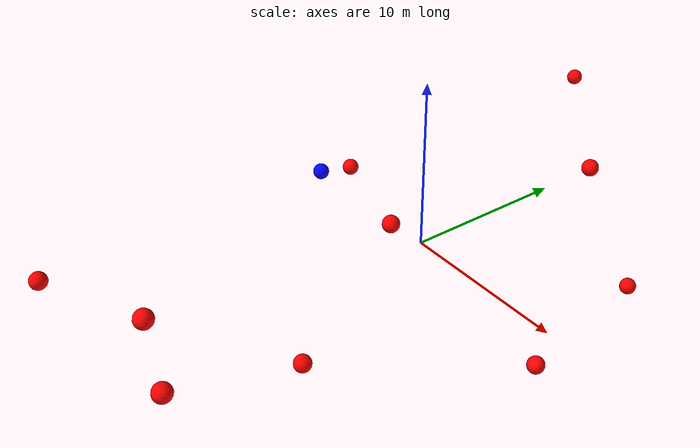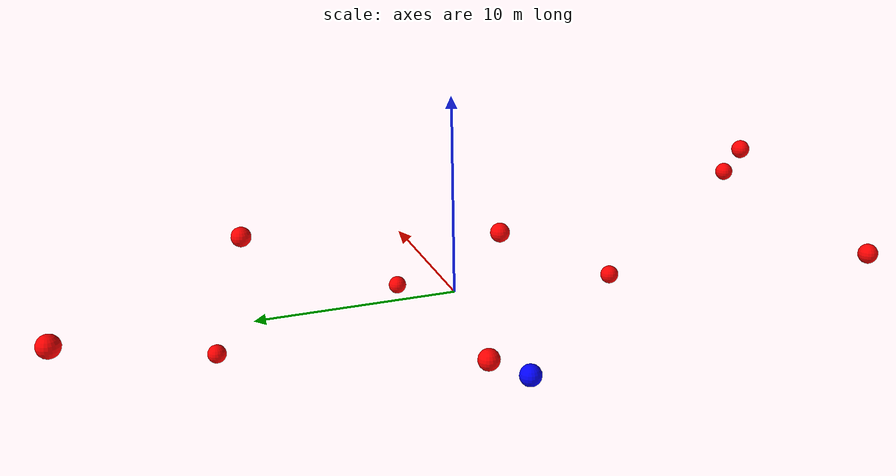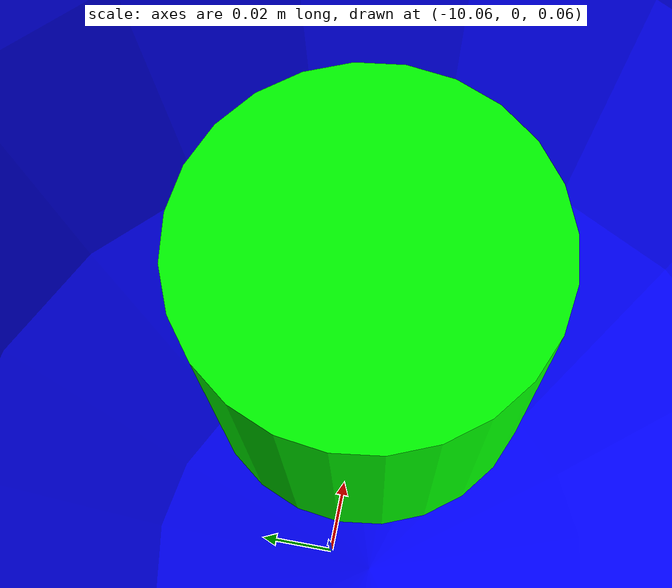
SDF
<?xml version="1.0" ?>
<sdf version="1.8">
    <world name="3d_world">
        <physics name="1ms" type="ode">
            <max_step_size>0.001</max_step_size>
            <real_time_factor>1.0</real_time_factor>
            <real_time_update_rate>1000.0</real_time_update_rate>
        </physics>
        <gravity>0 0 0</gravity>

        <plugin
            filename="gz-sim-physics-system"
            name="gz::sim::v8::systems::Physics">
        </plugin>
        <plugin
            filename="libignition-gazebo-user-commands-system.so"
            name="ignition::gazebo::systems::UserCommands">
        </plugin>
        <plugin
            filename="gz-sim-scene-broadcaster-system"
            name="gz::sim::systems::SceneBroadcaster">
        </plugin>
        <plugin
            filename="gz-sim-sensors-system"
            name="gz::sim::systems::Sensors">
            <render_engine>ogre2</render_engine>
        </plugin>

        <light type="directional" name="sun">
            <cast_shadows>true</cast_shadows>
            <pose>0 0 10 0 0 0</pose>
            <diffuse>0.8 0.8 0.8 1</diffuse>
            <specular>0.2 0.2 0.2 1</specular>
            <attenuation>
                <range>1000</range>
                <constant>0.9</constant>
                <linear>0.01</linear>
                <quadratic>0.001</quadratic>
            </attenuation>
            <direction>-0.5 0.1 -0.9</direction>
        </light>

        <!-- AGENTE -->
        <model name='agente' canonical_link='chassis'>
            <pose relative_to='world'>-10.0 0 0.0 0 0 0</pose>
            <link name='chassis'>
                <pose relative_to='__model__'>0.0 0 0.0 0 0 0</pose>
                <inertial>
                    <mass>1.14395</mass>
                    <inertia>
                        <ixx>0.095329</ixx>
                        <ixy>0</ixy>
                        <ixz>0</ixz>
                        <iyy>0.381317</iyy>
                        <iyz>0</iyz>
                        <izz>0.476646</izz>
                    </inertia>
                </inertial>
                <visual name='visual'>
                    <geometry>
                        <sphere>
                            <radius>0.5</radius>
                        </sphere>
                    </geometry>
                    <material>
                        <ambient>0.0 0.0 1.0 1</ambient>
                        <diffuse>0.0 0.0 1.0 1</diffuse>
                        <specular>0.0 0.0 1.0 1</specular>
                    </material>
                </visual>
                <collision name='collision'>
                    <geometry>
                        <sphere>
                            <radius>0.5</radius>
                        </sphere>
                    </geometry>
                </collision>
                <enable_gravity>false</enable_gravity>
            </link>

            <link name='lidar_link'>
                <pose relative_to='chassis'>0.0 0 0.1 0 0 0</pose>
                <inertial>
                    <mass>0.1</mass>
                    <inertia>
                        <ixx>0.000166667</ixx>
                        <iyy>0.000166667</iyy>
                        <izz>0.000166667</izz>
                    </inertia>
                </inertial>
                <collision name='collision'>
                    <geometry>
                        <cylinder>
                            <radius>0.05</radius>
                            <length>0.1</length>
                        </cylinder>
                    </geometry>
                </collision>
                <visual name='visual'>
                    <geometry>
                        <cylinder>
                            <radius>0.05</radius>
                            <length>0.1</length>
                        </cylinder>
                    </geometry>
                    <material>
                        <ambient>0.0 1.0 0.0 1</ambient>
                        <diffuse>0.0 1.0 0.0 1</diffuse>
                        <specular>0.0 1.0 0.0 1</specular>
                    </material>
                </visual>
                <sensor name="lidar" type="gpu_lidar">
                    <topic>scan</topic>
                    <update_rate>10</update_rate>
                    <lidar>
                        <scan>
                            <horizontal>
                                <samples>5000</samples>
                                <resolution>1</resolution>
                                <min_angle>-3.14159</min_angle>
                                <max_angle>3.14159</max_angle>
                            </horizontal>
                        </scan>
                        <range>
                            <min>0.1</min>
                            <max>10.0</max>
                            <resolution>0.01</resolution>
                        </range>
                    </lidar>
                    <visualize>true</visualize>
                    <always_on>true</always_on>
                    <update_rate>10</update_rate>
                    <pose_frame>lidar</pose_frame>
                </sensor>
                <enable_gravity>false</enable_gravity>
            </link>

            <joint name="lidar_joint" type="fixed">
                <parent>chassis</parent>
                <child>lidar_link</child>
            </joint>

            <plugin
                filename="ignition-gazebo-joint-state-publisher-system"
                name="ignition::gazebo::systems::JointStatePublisher">
            </plugin>
            <plugin
                filename="ignition-gazebo-odometry-publisher-system"
                name="ignition::gazebo::systems::OdometryPublisher">
                <dimensions>3</dimensions>
            </plugin>
            <plugin
                filename="ignition-gazebo-velocity-control-system"
                name="ignition::gazebo::systems::VelocityControl">
                <initial_linear>0.0 0 0</initial_linear>
                <initial_angular>0 0 0.0</initial_angular>
            </plugin>
            <plugin
                filename="libignition-gazebo-pose-publisher-system.so"
                name="ignition::gazebo::systems::PosePublisher">
                <topic>/agente/pose</topic>
                <frame_id>agente</frame_id>
                <update_rate>30</update_rate>
            </plugin>
        </model>

        <!-- OBSTACLE 1 -->
        <model name='obstacle_1' canonical_link='obstacle'>
            <static>false</static>
            <pose relative_to='world'>0.56 -2.67 2.64 0 0 0</pose>
            <link name='obstacle'>
                <pose relative_to='__model__'>0.0 0 0.0 0 0 0</pose>
                <visual name='visual'>
                    <geometry>
                        <sphere>
                            <radius>0.50</radius>
                        </sphere>
                    </geometry>
                    <material>
                        <ambient>1.0 0.0 0.0 1</ambient>
                        <diffuse>1.0 0.0 0.0 1</diffuse>
                        <specular>1.0 0.0 0.0 1</specular>
                    </material>
                </visual>
                <collision name='collision'>
                    <geometry>
                        <sphere>
                            <radius>0.50</radius>
                        </sphere>
                    </geometry>
                </collision>
                <enable_gravity>false</enable_gravity>
            </link>

            <plugin
                filename="ignition-gazebo-velocity-control-system"
                name="ignition::gazebo::systems::VelocityControl">
                <initial_linear>-0.07 0.65 -0.64</initial_linear>
                <initial_angular>0 0 0</initial_angular>
            </plugin>

            <plugin
                filename="ignition-gazebo-odometry-publisher-system"
                name="ignition::gazebo::systems::OdometryPublisher">
                <dimensions>3</dimensions>
            </plugin>
        </model>

        <!-- OBSTACLE 2 -->
        <model name='obstacle_2' canonical_link='obstacle'>
            <static>false</static>
            <pose relative_to='world'>2.75 -18.13 4.95 0 0 0</pose>
            <link name='obstacle'>
                <pose relative_to='__model__'>0.0 0 0.0 0 0 0</pose>
                <visual name='visual'>
                    <geometry>
                        <sphere>
                            <radius>0.50</radius>
                        </sphere>
                    </geometry>
                    <material>
                        <ambient>1.0 0.0 0.0 1</ambient>
                        <diffuse>1.0 0.0 0.0 1</diffuse>
                        <specular>1.0 0.0 0.0 1</specular>
                    </material>
                </visual>
                <collision name='collision'>
                    <geometry>
                        <sphere>
                            <radius>0.50</radius>
                        </sphere>
                    </geometry>
                </collision>
                <enable_gravity>false</enable_gravity>
            </link>

            <plugin
                filename="ignition-gazebo-velocity-control-system"
                name="ignition::gazebo::systems::VelocityControl">
                <initial_linear>0.11 1.93 -0.53</initial_linear>
                <initial_angular>0 0 0</initial_angular>
            </plugin>

            <plugin
                filename="ignition-gazebo-odometry-publisher-system"
                name="ignition::gazebo::systems::OdometryPublisher">
                <dimensions>3</dimensions>
            </plugin>
        </model>

        <!-- OBSTACLE 3 -->
        <model name='obstacle_3' canonical_link='obstacle'>
            <static>false</static>
            <pose relative_to='world'>-6.10 18.70 2.86 0 0 0</pose>
            <link name='obstacle'>
                <pose relative_to='__model__'>0.0 0 0.0 0 0 0</pose>
                <visual name='visual'>
                    <geometry>
                        <sphere>
                            <radius>0.50</radius>
                        </sphere>
                    </geometry>
                    <material>
                        <ambient>1.0 0.0 0.0 1</ambient>
                        <diffuse>1.0 0.0 0.0 1</diffuse>
                        <specular>1.0 0.0 0.0 1</specular>
                    </material>
                </visual>
                <collision name='collision'>
                    <geometry>
                        <sphere>
                            <radius>0.50</radius>
                        </sphere>
                    </geometry>
                </collision>
                <enable_gravity>false</enable_gravity>
            </link>

            <plugin
                filename="ignition-gazebo-velocity-control-system"
                name="ignition::gazebo::systems::VelocityControl">
                <initial_linear>0.85 -1.79 -0.27</initial_linear>
                <initial_angular>0 0 0</initial_angular>
            </plugin>

            <plugin
                filename="ignition-gazebo-odometry-publisher-system"
                name="ignition::gazebo::systems::OdometryPublisher">
                <dimensions>3</dimensions>
            </plugin>
        </model>

        <!-- OBSTACLE 4 -->
        <model name='obstacle_4' canonical_link='obstacle'>
            <static>false</static>
            <pose relative_to='world'>6.36 11.21 -4.28 0 0 0</pose>
            <link name='obstacle'>
                <pose relative_to='__model__'>0.0 0 0.0 0 0 0</pose>
                <visual name='visual'>
                    <geometry>
                        <sphere>
                            <radius>0.50</radius>
                        </sphere>
                    </geometry>
                    <material>
                        <ambient>1.0 0.0 0.0 1</ambient>
                        <diffuse>1.0 0.0 0.0 1</diffuse>
                        <specular>1.0 0.0 0.0 1</specular>
                    </material>
                </visual>
                <collision name='collision'>
                    <geometry>
                        <sphere>
                            <radius>0.50</radius>
                        </sphere>
                    </geometry>
                </collision>
                <enable_gravity>false</enable_gravity>
            </link>

            <plugin
                filename="ignition-gazebo-velocity-control-system"
                name="ignition::gazebo::systems::VelocityControl">
                <initial_linear>-0.30 -1.85 0.71</initial_linear>
                <initial_angular>0 0 0</initial_angular>
            </plugin>

            <plugin
                filename="ignition-gazebo-odometry-publisher-system"
                name="ignition::gazebo::systems::OdometryPublisher">
                <dimensions>3</dimensions>
            </plugin>
        </model>

        <!-- OBSTACLE 5 -->
        <model name='obstacle_5' canonical_link='obstacle'>
            <static>false</static>
            <pose relative_to='world'>5.28 -18.76 2.89 0 0 0</pose>
            <link name='obstacle'>
                <pose relative_to='__model__'>0.0 0 0.0 0 0 0</pose>
                <visual name='visual'>
                    <geometry>
                        <sphere>
                            <radius>0.50</radius>
                        </sphere>
                    </geometry>
                    <material>
                        <ambient>1.0 0.0 0.0 1</ambient>
                        <diffuse>1.0 0.0 0.0 1</diffuse>
                        <specular>1.0 0.0 0.0 1</specular>
                    </material>
                </visual>
                <collision name='collision'>
                    <geometry>
                        <sphere>
                            <radius>0.50</radius>
                        </sphere>
                    </geometry>
                </collision>
                <enable_gravity>false</enable_gravity>
            </link>

            <plugin
                filename="ignition-gazebo-velocity-control-system"
                name="ignition::gazebo::systems::VelocityControl">
                <initial_linear>-0.78 1.82 -0.28</initial_linear>
                <initial_angular>0 0 0</initial_angular>
            </plugin>

            <plugin
                filename="ignition-gazebo-odometry-publisher-system"
                name="ignition::gazebo::systems::OdometryPublisher">
                <dimensions>3</dimensions>
            </plugin>
        </model>

        <!-- OBSTACLE 6 -->
        <model name='obstacle_6' canonical_link='obstacle'>
            <static>false</static>
            <pose relative_to='world'>9.12 0.45 -2.96 0 0 0</pose>
            <link name='obstacle'>
                <pose relative_to='__model__'>0.0 0 0.0 0 0 0</pose>
                <visual name='visual'>
                    <geometry>
                        <sphere>
                            <radius>0.50</radius>
                        </sphere>
                    </geometry>
                    <material>
                        <ambient>1.0 0.0 0.0 1</ambient>
                        <diffuse>1.0 0.0 0.0 1</diffuse>
                        <specular>1.0 0.0 0.0 1</specular>
                    </material>
                </visual>
                <collision name='collision'>
                    <geometry>
                        <sphere>
                            <radius>0.50</radius>
                        </sphere>
                    </geometry>
                </collision>
                <enable_gravity>false</enable_gravity>
            </link>

            <plugin
                filename="ignition-gazebo-velocity-control-system"
                name="ignition::gazebo::systems::VelocityControl">
                <initial_linear>-1.93 -0.08 0.52</initial_linear>
                <initial_angular>0 0 0</initial_angular>
            </plugin>

            <plugin
                filename="ignition-gazebo-odometry-publisher-system"
                name="ignition::gazebo::systems::OdometryPublisher">
                <dimensions>3</dimensions>
            </plugin>
        </model>

        <!-- OBSTACLE 7 -->
        <model name='obstacle_7' canonical_link='obstacle'>
            <static>false</static>
            <pose relative_to='world'>3.36 9.85 3.11 0 0 0</pose>
            <link name='obstacle'>
                <pose relative_to='__model__'>0.0 0 0.0 0 0 0</pose>
                <visual name='visual'>
                    <geometry>
                        <sphere>
                            <radius>0.50</radius>
                        </sphere>
                    </geometry>
                    <material>
                        <ambient>1.0 0.0 0.0 1</ambient>
                        <diffuse>1.0 0.0 0.0 1</diffuse>
                        <specular>1.0 0.0 0.0 1</specular>
                    </material>
                </visual>
                <collision name='collision'>
                    <geometry>
                        <sphere>
                            <radius>0.50</radius>
                        </sphere>
                    </geometry>
                </collision>
                <enable_gravity>false</enable_gravity>
            </link>

            <plugin
                filename="ignition-gazebo-velocity-control-system"
                name="ignition::gazebo::systems::VelocityControl">
                <initial_linear>-0.88 -1.71 -0.54</initial_linear>
                <initial_angular>0 0 0</initial_angular>
            </plugin>

            <plugin
                filename="ignition-gazebo-odometry-publisher-system"
                name="ignition::gazebo::systems::OdometryPublisher">
                <dimensions>3</dimensions>
            </plugin>
        </model>

        <!-- OBSTACLE 8 -->
        <model name='obstacle_8' canonical_link='obstacle'>
            <static>false</static>
            <pose relative_to='world'>-8.75 1.42 0.42 0 0 0</pose>
            <link name='obstacle'>
                <pose relative_to='__model__'>0.0 0 0.0 0 0 0</pose>
                <visual name='visual'>
                    <geometry>
                        <sphere>
                            <radius>0.50</radius>
                        </sphere>
                    </geometry>
                    <material>
                        <ambient>1.0 0.0 0.0 1</ambient>
                        <diffuse>1.0 0.0 0.0 1</diffuse>
                        <specular>1.0 0.0 0.0 1</specular>
                    </material>
                </visual>
                <collision name='collision'>
                    <geometry>
                        <sphere>
                            <radius>0.50</radius>
                        </sphere>
                    </geometry>
                </collision>
                <enable_gravity>false</enable_gravity>
            </link>

            <plugin
                filename="ignition-gazebo-velocity-control-system"
                name="ignition::gazebo::systems::VelocityControl">
                <initial_linear>1.88 -0.66 -0.19</initial_linear>
                <initial_angular>0 0 0</initial_angular>
            </plugin>

            <plugin
                filename="ignition-gazebo-odometry-publisher-system"
                name="ignition::gazebo::systems::OdometryPublisher">
                <dimensions>3</dimensions>
            </plugin>
        </model>

        <!-- OBSTACLE 9 -->
        <model name='obstacle_9' canonical_link='obstacle'>
            <static>false</static>
            <pose relative_to='world'>2.99 -10.19 -1.61 0 0 0</pose>
            <link name='obstacle'>
                <pose relative_to='__model__'>0.0 0 0.0 0 0 0</pose>
                <visual name='visual'>
                    <geometry>
                        <sphere>
                            <radius>0.50</radius>
                        </sphere>
                    </geometry>
                    <material>
                        <ambient>1.0 0.0 0.0 1</ambient>
                        <diffuse>1.0 0.0 0.0 1</diffuse>
                        <specular>1.0 0.0 0.0 1</specular>
                    </material>
                </visual>
                <collision name='collision'>
                    <geometry>
                        <sphere>
                            <radius>0.50</radius>
                        </sphere>
                    </geometry>
                </collision>
                <enable_gravity>false</enable_gravity>
            </link>

            <plugin
                filename="ignition-gazebo-velocity-control-system"
                name="ignition::gazebo::systems::VelocityControl">
                <initial_linear>0.21 1.80 0.29</initial_linear>
                <initial_angular>0 0 0</initial_angular>
            </plugin>

            <plugin
                filename="ignition-gazebo-odometry-publisher-system"
                name="ignition::gazebo::systems::OdometryPublisher">
                <dimensions>3</dimensions>
            </plugin>
        </model>

        <!-- OBSTACLE 10 -->
        <model name='obstacle_10' canonical_link='obstacle'>
            <static>false</static>
            <pose relative_to='world'>-7.02 -19.61 1.80 0 0 0</pose>
            <link name='obstacle'>
                <pose relative_to='__model__'>0.0 0 0.0 0 0 0</pose>
                <visual name='visual'>
                    <geometry>
                        <sphere>
                            <radius>0.50</radius>
                        </sphere>
                    </geometry>
                    <material>
                        <ambient>1.0 0.0 0.0 1</ambient>
                        <diffuse>1.0 0.0 0.0 1</diffuse>
                        <specular>1.0 0.0 0.0 1</specular>
                    </material>
                </visual>
                <collision name='collision'>
                    <geometry>
                        <sphere>
                            <radius>0.50</radius>
                        </sphere>
                    </geometry>
                </collision>
                <enable_gravity>false</enable_gravity>
            </link>

            <plugin
                filename="ignition-gazebo-velocity-control-system"
                name="ignition::gazebo::systems::VelocityControl">
                <initial_linear>0.74 1.85 -0.17</initial_linear>
                <initial_angular>0 0 0</initial_angular>
            </plugin>

            <plugin
                filename="ignition-gazebo-odometry-publisher-system"
                name="ignition::gazebo::systems::OdometryPublisher">
                <dimensions>3</dimensions>
            </plugin>
        </model>

    </world>
</sdf>
